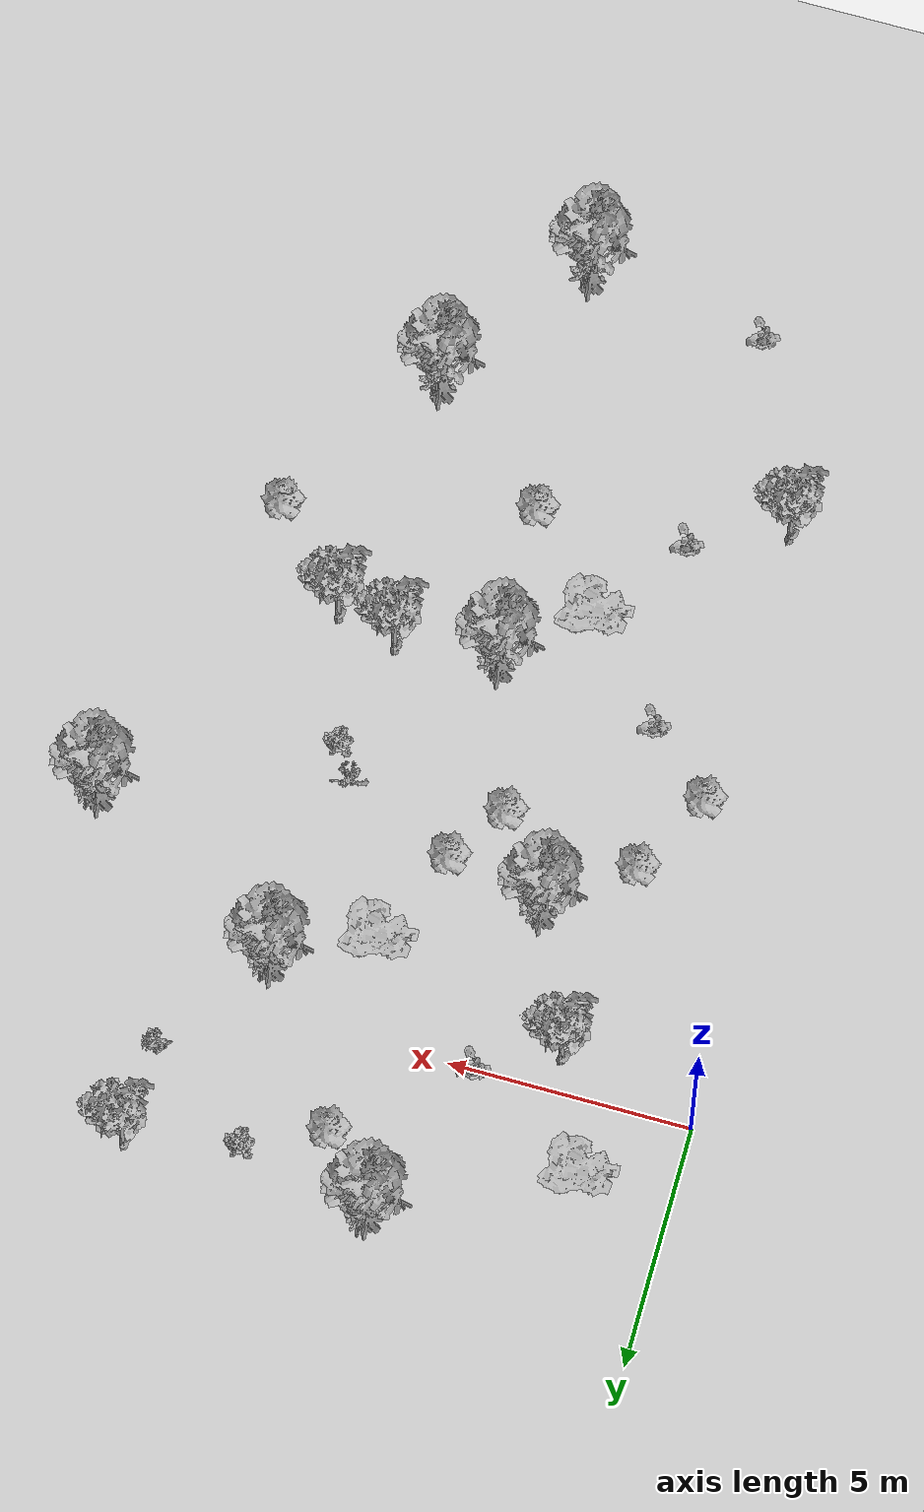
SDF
<sdf version="1.7">
 <world name="default">
  <model name="ground_plane">
   <static>1</static>
   <link name="link">
    <collision name="collision">
     <geometry><plane><normal>0 0 1</normal><size>100 100</size></plane></geometry>
     <surface>
      <contact><collide_bitmask>65535</collide_bitmask></contact>
      <friction><ode><mu>100</mu><mu2>50</mu2></ode></friction>
     </surface>
    </collision>
    <visual name="visual">
     <cast_shadows>0</cast_shadows>
     <geometry><plane><normal>0 0 1</normal><size>100 100</size></plane></geometry>
     <material>
      <script><uri>file://media/materials/scripts/gazebo.material</uri><name>Gazebo/Grey</name></script>
     </material>
    </visual>
   </link>
  </model>
  <model name="Tree 4_clone_1">
   <static>1</static>
   <pose>4.05214 -3.45088 8e-06 1.57079 -0 0</pose>
   <link name="link">
    <collision name="collision">
     <geometry><mesh><scale>1 1 1</scale><uri>model://tree_4/meshes/tree_4.obj</uri></mesh></geometry>
    </collision>
    <visual name="visual">
     <geometry><mesh><scale>1 1 1</scale><uri>model://tree_4/meshes/tree_4.obj</uri></mesh></geometry>
    </visual>
   </link>
  </model>
  <model name="Tree 4_clone_2">
   <static>1</static>
   <pose>5.65986 3.50511 8e-06 1.57079 -0 0</pose>
   <link name="link">
    <collision name="collision">
     <geometry><mesh><scale>1 1 1</scale><uri>model://tree_4/meshes/tree_4.obj</uri></mesh></geometry>
    </collision>
    <visual name="visual">
     <geometry><mesh><scale>1 1 1</scale><uri>model://tree_4/meshes/tree_4.obj</uri></mesh></geometry>
    </visual>
   </link>
  </model>
  <model name="Tree 4_clone_7">
   <static>1</static>
   <pose>8.91411 -0.942577 8e-06 1.57079 -0 0</pose>
   <link name="link">
    <collision name="collision">
     <geometry><mesh><scale>1 1 1</scale><uri>model://tree_4/meshes/tree_4.obj</uri></mesh></geometry>
    </collision>
    <visual name="visual">
     <geometry><mesh><scale>1 1 1</scale><uri>model://tree_4/meshes/tree_4.obj</uri></mesh></geometry>
    </visual>
   </link>
  </model>
  <model name="Tree 4_clone_8">
   <static>1</static>
   <pose>6.25927 -8.22753 8e-06 1.57079 -0 0</pose>
   <link name="link">
    <collision name="collision">
     <geometry><mesh><scale>1 1 1</scale><uri>model://tree_4/meshes/tree_4.obj</uri></mesh></geometry>
    </collision>
    <visual name="visual">
     <geometry><mesh><scale>1 1 1</scale><uri>model://tree_4/meshes/tree_4.obj</uri></mesh></geometry>
    </visual>
   </link>
  </model>
  <model name="Tree 3">
   <static>1</static>
   <pose>1.90396 1.47093 0 1.57079 -0 0</pose>
   <link name="link">
    <collision name="collision">
     <geometry><mesh><scale>1 1 1</scale><uri>model://tree_3/meshes/tree_3.obj</uri></mesh></geometry>
    </collision>
    <visual name="visual">
     <geometry><mesh><scale>1 1 1</scale><uri>model://tree_3/meshes/tree_3.obj</uri></mesh></geometry>
    </visual>
   </link>
  </model>
  <model name="Tree 5">
   <static>1</static>
   <pose>1.53215 -6.59967 0 1.57079 -0 0</pose>
   <link name="link">
    <collision name="collision">
     <geometry><mesh><scale>1 1 1</scale><uri>model://tree_5/meshes/tree.obj</uri></mesh></geometry>
    </collision>
    <visual name="visual">
     <geometry><mesh><scale>1 1 1</scale><uri>model://tree_5/meshes/tree.obj</uri></mesh></geometry>
    </visual>
   </link>
  </model>
  <model name="Tree 5_clone">
   <static>1</static>
   <pose>5.29143 -5.28726 0 1.57079 -0 0</pose>
   <link name="link">
    <collision name="collision">
     <geometry><mesh><scale>1 1 1</scale><uri>model://tree_5/meshes/tree.obj</uri></mesh></geometry>
    </collision>
    <visual name="visual">
     <geometry><mesh><scale>1 1 1</scale><uri>model://tree_5/meshes/tree.obj</uri></mesh></geometry>
    </visual>
   </link>
  </model>
  <model name="Tree 5_clone_0">
   <static>1</static>
   <pose>6.12243 -4.07602 0 1.57079 -0 0</pose>
   <link name="link">
    <collision name="collision">
     <geometry><mesh><scale>1 1 1</scale><uri>model://tree_5/meshes/tree.obj</uri></mesh></geometry>
    </collision>
    <visual name="visual">
     <geometry><mesh><scale>1 1 1</scale><uri>model://tree_5/meshes/tree.obj</uri></mesh></geometry>
    </visual>
   </link>
  </model>
  <model name="Tree 5_clone_1">
   <static>1</static>
   <pose>6.86464 2.02302 0 1.57079 -0 0</pose>
   <link name="link">
    <collision name="collision">
     <geometry><mesh><scale>1 1 1</scale><uri>model://tree_5/meshes/tree.obj</uri></mesh></geometry>
    </collision>
    <visual name="visual">
     <geometry><mesh><scale>1 1 1</scale><uri>model://tree_5/meshes/tree.obj</uri></mesh></geometry>
    </visual>
   </link>
  </model>
  <model name="Tree 5_0">
   <static>1</static>
   <pose>2.44768 -4.87592 0 1.57079 -0 0</pose>
   <link name="link">
    <collision name="collision">
     <geometry><mesh><scale>1 1 1</scale><uri>model://tree_5/meshes/tree.obj</uri></mesh></geometry>
    </collision>
    <visual name="visual">
     <geometry><mesh><scale>1 1 1</scale><uri>model://tree_5/meshes/tree.obj</uri></mesh></geometry>
    </visual>
   </link>
  </model>
  <model name="Tree 9">
   <static>1</static>
   <pose>2.86217 -0.651587 0 1.57079 -0 0</pose>
   <link name="link">
    <collision name="collision">
     <geometry><mesh><scale>1 1 1</scale><uri>model://tree_9/meshes/tree_9.obj</uri></mesh></geometry>
    </collision>
    <visual name="visual">
     <geometry><mesh><scale>1 1 1</scale><uri>model://tree_9/meshes/tree_9.obj</uri></mesh></geometry>
    </visual>
   </link>
  </model>
  <model name="Bush 0_0">
   <static>1</static>
   <pose>2.97356 -7.76599 0 1.57079 -0 0</pose>
   <link name="link">
    <collision name="collision">
     <geometry><mesh><scale>1 1 1</scale><uri>model://bush_0/meshes/bush_0.obj</uri></mesh></geometry>
    </collision>
    <visual name="visual">
     <geometry><mesh><scale>1 1 1</scale><uri>model://bush_0/meshes/bush_0.obj</uri></mesh></geometry>
    </visual>
   </link>
  </model>
  <model name="Bush 0_1">
   <static>1</static>
   <pose>4.51754 0.086489 0 1.57079 -0 0</pose>
   <link name="link">
    <collision name="collision">
     <geometry><mesh><scale>1 1 1</scale><uri>model://bush_0/meshes/bush_0.obj</uri></mesh></geometry>
    </collision>
    <visual name="visual">
     <geometry><mesh><scale>1 1 1</scale><uri>model://bush_0/meshes/bush_0.obj</uri></mesh></geometry>
    </visual>
   </link>
  </model>
  <model name="Bush 4">
   <static>1</static>
   <pose>8.47235 -5.13504 0 1.57079 -0 0</pose>
   <link name="link">
    <collision name="collision">
     <geometry><mesh><scale>1 1 1</scale><uri>model://bush_4/meshes/bush_4.obj</uri></mesh></geometry>
    </collision>
    <visual name="visual">
     <geometry><mesh><scale>1 1 1</scale><uri>model://bush_4/meshes/bush_4.obj</uri></mesh></geometry>
    </visual>
   </link>
  </model>
  <model name="Bush 3_0">
   <static>1</static>
   <pose>8.94884 -5.79851 0 1.57079 -0 0</pose>
   <link name="link">
    <collision name="collision">
     <geometry><mesh><scale>1 1 1</scale><uri>model://bush_3/meshes/bush_3.obj</uri></mesh></geometry>
    </collision>
    <visual name="visual">
     <geometry><mesh><scale>1 1 1</scale><uri>model://bush_3/meshes/bush_3.obj</uri></mesh></geometry>
    </visual>
   </link>
  </model>
  <model name="Tree 9_0">
   <static>1</static>
   <pose>8.38905 -8.02463 0 1.57079 -0 0</pose>
   <link name="link">
    <collision name="collision">
     <geometry><mesh><scale>1 1 1</scale><uri>model://tree_9/meshes/tree_9.obj</uri></mesh></geometry>
    </collision>
    <visual name="visual">
     <geometry><mesh><scale>1 1 1</scale><uri>model://tree_9/meshes/tree_9.obj</uri></mesh></geometry>
    </visual>
   </link>
  </model>
  <model name="Tree 9_1">
   <static>1</static>
   <pose>9.66007 -8.36648 0 1.57079 -0 0</pose>
   <link name="link">
    <collision name="collision">
     <geometry><mesh><scale>1 1 1</scale><uri>model://tree_9/meshes/tree_9.obj</uri></mesh></geometry>
    </collision>
    <visual name="visual">
     <geometry><mesh><scale>1 1 1</scale><uri>model://tree_9/meshes/tree_9.obj</uri></mesh></geometry>
    </visual>
   </link>
  </model>
  <model name="Tree 9_2">
   <static>1</static>
   <pose>10.6908 3.38344 0 1.57079 -0 0</pose>
   <link name="link">
    <collision name="collision">
     <geometry><mesh><scale>1 1 1</scale><uri>model://tree_9/meshes/tree_9.obj</uri></mesh></geometry>
    </collision>
    <visual name="visual">
     <geometry><mesh><scale>1 1 1</scale><uri>model://tree_9/meshes/tree_9.obj</uri></mesh></geometry>
    </visual>
   </link>
  </model>
  <model name="Bush 3_1">
   <static>1</static>
   <pose>8.51901 2.75911 0 1.57079 -0 0</pose>
   <link name="link">
    <collision name="collision">
     <geometry><mesh><scale>1 1 1</scale><uri>model://bush_3/meshes/bush_3.obj</uri></mesh></geometry>
    </collision>
    <visual name="visual">
     <geometry><mesh><scale>1 1 1</scale><uri>model://bush_3/meshes/bush_3.obj</uri></mesh></geometry>
    </visual>
   </link>
  </model>
  <model name="Bush 2_2">
   <static>1</static>
   <pose>10.6857 1.14009 0 1.57079 -0 0</pose>
   <link name="link">
    <collision name="collision">
     <geometry><mesh><scale>1 1 1</scale><uri>model://bush_2/meshes/bush_2.obj</uri></mesh></geometry>
    </collision>
    <visual name="visual">
     <geometry><mesh><scale>1 1 1</scale><uri>model://bush_2/meshes/bush_2.obj</uri></mesh></geometry>
    </visual>
   </link>
  </model>
  <model name="Tree 3_0">
   <static>1</static>
   <pose>7.02994 -2.12178 0 1.57079 -0 0</pose>
   <link name="link">
    <collision name="collision">
     <geometry><mesh><scale>1 1 1</scale><uri>model://tree_3/meshes/tree_3.obj</uri></mesh></geometry>
    </collision>
    <visual name="visual">
     <geometry><mesh><scale>1 1 1</scale><uri>model://tree_3/meshes/tree_3.obj</uri></mesh></geometry>
    </visual>
   </link>
  </model>
  <model name="Tree 3_1">
   <static>1</static>
   <pose>4.72316 -9.8562 0 1.57079 -0 0</pose>
   <link name="link">
    <collision name="collision">
     <geometry><mesh><scale>1 1 1</scale><uri>model://tree_3/meshes/tree_3.obj</uri></mesh></geometry>
    </collision>
    <visual name="visual">
     <geometry><mesh><scale>1 1 1</scale><uri>model://tree_3/meshes/tree_3.obj</uri></mesh></geometry>
    </visual>
   </link>
  </model>
  <model name="Tree 9_3">
   <static>1</static>
   <pose>1.36155 -12.4766 0 1.57079 -0 0</pose>
   <link name="link">
    <collision name="collision">
     <geometry><mesh><scale>1 1 1</scale><uri>model://tree_9/meshes/tree_9.obj</uri></mesh></geometry>
    </collision>
    <visual name="visual">
     <geometry><mesh><scale>1 1 1</scale><uri>model://tree_9/meshes/tree_9.obj</uri></mesh></geometry>
    </visual>
   </link>
  </model>
  <model name="Tree 4_1_clone">
   <static>1</static>
   <pose>6.73288 -16.8246 0 1.57079 -0 0</pose>
   <link name="link">
    <collision name="collision">
     <geometry><mesh><scale>1 1 1</scale><uri>model://tree_4/meshes/tree_4.obj</uri></mesh></geometry>
    </collision>
    <visual name="visual">
     <geometry><mesh><scale>1 1 1</scale><uri>model://tree_4/meshes/tree_4.obj</uri></mesh></geometry>
    </visual>
   </link>
  </model>
  <model name="Tree 4_1_clone_11">
   <static>1</static>
   <pose>9.02427 -13.6979 0 1.57079 -0 0</pose>
   <link name="link">
    <collision name="collision">
     <geometry><mesh><scale>1 1 1</scale><uri>model://tree_4/meshes/tree_4.obj</uri></mesh></geometry>
    </collision>
    <visual name="visual">
     <geometry><mesh><scale>1 1 1</scale><uri>model://tree_4/meshes/tree_4.obj</uri></mesh></geometry>
    </visual>
   </link>
  </model>
  <model name="Tree 4_1_clone_12">
   <static>1</static>
   <pose>13.2176 -3.4257 0 1.57079 -0 0</pose>
   <link name="link">
    <collision name="collision">
     <geometry><mesh><scale>1 1 1</scale><uri>model://tree_4/meshes/tree_4.obj</uri></mesh></geometry>
    </collision>
    <visual name="visual">
     <geometry><mesh><scale>1 1 1</scale><uri>model://tree_4/meshes/tree_4.obj</uri></mesh></geometry>
    </visual>
   </link>
  </model>
  <model name="Bush 0_1_clone_6">
   <static>1</static>
   <pose>3.35749 -11.6755 0 1.57079 -0 0</pose>
   <link name="link">
    <collision name="collision">
     <geometry><mesh><scale>1 1 1</scale><uri>model://bush_0/meshes/bush_0.obj</uri></mesh></geometry>
    </collision>
    <visual name="visual">
     <geometry><mesh><scale>1 1 1</scale><uri>model://bush_0/meshes/bush_0.obj</uri></mesh></geometry>
    </visual>
   </link>
  </model>
  <model name="Bush 0_1_clone_7">
   <static>1</static>
   <pose>3.04504 -16.4227 0 1.57079 -0 0</pose>
   <link name="link">
    <collision name="collision">
     <geometry><mesh><scale>1 1 1</scale><uri>model://bush_0/meshes/bush_0.obj</uri></mesh></geometry>
    </collision>
    <visual name="visual">
     <geometry><mesh><scale>1 1 1</scale><uri>model://bush_0/meshes/bush_0.obj</uri></mesh></geometry>
    </visual>
   </link>
  </model>
  <model name="Tree 5_clone_0_clone">
   <static>1</static>
   <pose>6.41154 -11.6716 0 1.57079 -0 0</pose>
   <link name="link">
    <collision name="collision">
     <geometry><mesh><scale>1 1 1</scale><uri>model://tree_5/meshes/tree.obj</uri></mesh></geometry>
    </collision>
    <visual name="visual">
     <geometry><mesh><scale>1 1 1</scale><uri>model://tree_5/meshes/tree.obj</uri></mesh></geometry>
    </visual>
   </link>
  </model>
  <model name="Tree 5_clone_0_clone_0">
   <static>1</static>
   <pose>11.4044 -10.4093 0 1.57079 -0 0</pose>
   <link name="link">
    <collision name="collision">
     <geometry><mesh><scale>1 1 1</scale><uri>model://tree_5/meshes/tree.obj</uri></mesh></geometry>
    </collision>
    <visual name="visual">
     <geometry><mesh><scale>1 1 1</scale><uri>model://tree_5/meshes/tree.obj</uri></mesh></geometry>
    </visual>
   </link>
  </model>
 </world>
</sdf>
